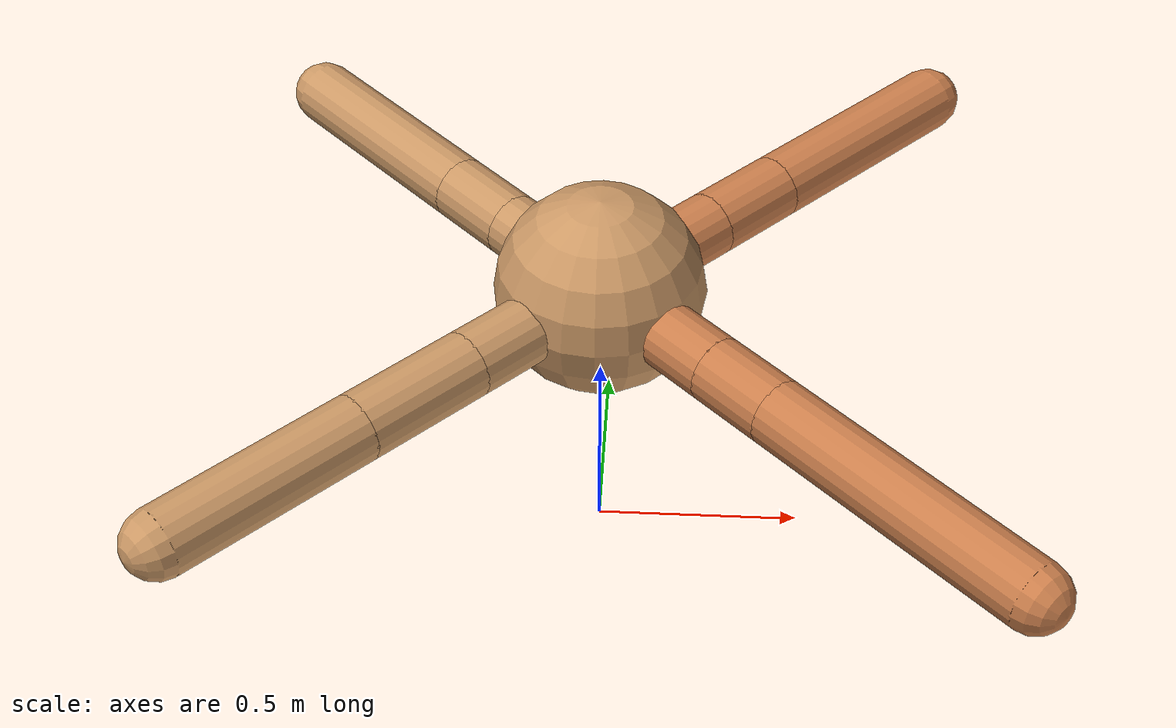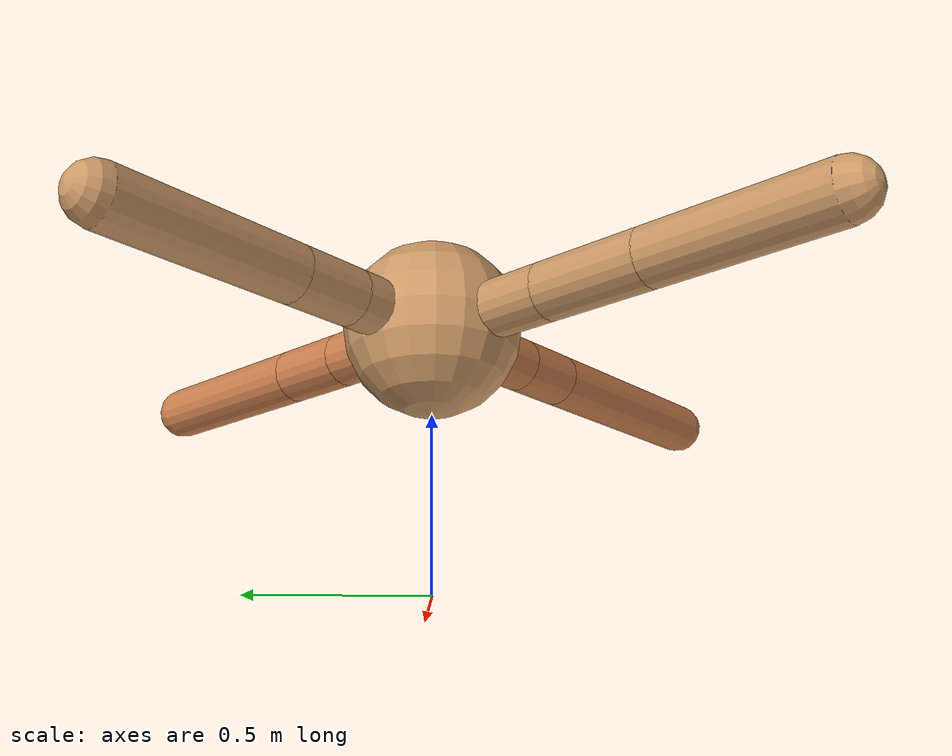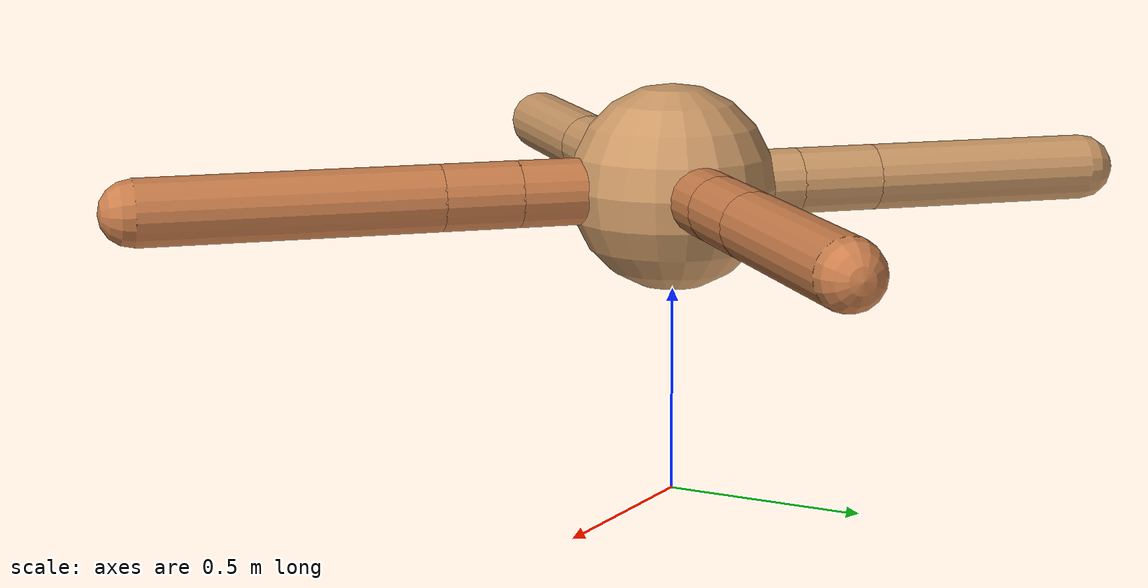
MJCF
<mujoco model="ant">
  <compiler angle="degree" coordinate="local" inertiafromgeom="true" />
  <option integrator="RK4" timestep="0.01" />
  <custom>
    <numeric data="0.0 0.0 0.55 1.0 0.0 0.0 0.0 0.0 1.0 0.0 -1.0 0.0 -1.0 0.0 1.0" name="init_qpos" />
  </custom>
  <default>
    <joint armature="1" damping="1" limited="true" />
    <geom conaffinity="0" condim="3" density="5.0" friction="1.5 0.1 0.1" margin="0.01" rgba="0.8 0.6 0.4 1" />
  </default>
  <worldbody>
    <body name="torso" pos="0 0 0.75">
      <geom name="torso_geom" pos="0 0 0" size="0.25" type="sphere" />

      <body name="front_left_leg" pos="0 0 0">
        <geom fromto="0.0 0.0 0.0 0.25313814774535387 0.25313814774535387 0.0" name="aux_1_geom" size="0.08" type="capsule" rgba=".8 .5 .3 1" />
        <body name="aux_1" pos="0.25313814774535387 0.25313814774535387 0.0">
          <joint axis="0 0 1" name="hip_1" pos="0.0 0.0 0.0" range="-40 40" type="hinge" />
          <geom fromto="0.0 0.0 0.0 0.1575429926842023 0.1575429926842023 0.0" name="left_leg_geom" size="0.08" type="capsule" rgba=".8 .5 .3 1" />
          <body pos="0.1575429926842023 0.1575429926842023 0.0" name="front_left_foot">
            <joint axis="-1 1 0" name="ankle_1" pos="0.0 0.0 0.0" range="30 100" type="hinge" />
            <geom fromto="0.0 0.0 0.0 0.4048272281050953 0.4048272281050953 0.0" name="left_ankle_geom" size="0.08" type="capsule" rgba=".8 .5 .3 1" />
          </body>
        </body>
      </body>
      <body name="front_right_leg" pos="0 0 0">
        <geom fromto="0.0 0.0 0.0 -0.22252096500378438 0.22252096500378438 0.0" name="aux_2_geom" size="0.08" type="capsule" />
        <body name="aux_2" pos="-0.22252096500378438 0.22252096500378438 0.0">
          <joint axis="0 0 1" name="hip_2" pos="0.0 0.0 0.0" range="-40 40" type="hinge" />
          <geom fromto="0.0 0.0 0.0 -0.14131097591973515 0.14131097591973515 0.0" name="right_leg_geom" size="0.08" type="capsule" />
          <body pos="-0.14131097591973515 0.14131097591973515 0.0" name="front_right_foot">
            <joint axis="1 1 0" name="ankle_2" pos="0.0 0.0 0.0" range="-100 -30" type="hinge" />
            <geom fromto="0.0 0.0 0.0 -0.3984665028718786 0.3984665028718786 0.0" name="right_ankle_geom" size="0.08" type="capsule" />
          </body>
        </body>
      </body>
      <body name="left_back_leg" pos="0 0 0">
        <geom fromto="0.0 0.0 0.0 -0.2839363829740544 -0.2839363829740544 0.0" name="aux_3_geom" size="0.08" type="capsule" />
        <body name="aux_3" pos="-0.2839363829740544 -0.2839363829740544 0.0">
          <joint axis="0 0 1" name="hip_3" pos="0.0 0.0 0.0" range="-40 40" type="hinge" />
          <geom fromto="0.0 0.0 0.0 -0.2176691160058801 -0.2176691160058801 0.0" name="back_leg_geom" size="0.08" type="capsule" />
          <body pos="-0.2176691160058801 -0.2176691160058801 0.0" name="left_back_foot">
            <joint axis="-1 1 0" name="ankle_3" pos="0.0 0.0 0.0" range="-100 -30" type="hinge" />
            <geom fromto="0.0 0.0 0.0 -0.3586937981214998 -0.3586937981214998 0.0" name="third_ankle_geom" size="0.08" type="capsule" />
          </body>
        </body>
      </body>
      <body name="right_back_leg" pos="0 0 0">
        <geom fromto="0.0 0.0 0.0 0.2731021815505141 -0.2731021815505141 0.0" name="aux_4_geom" size="0.08" type="capsule" rgba=".8 .5 .3 1" />
        <body name="aux_4" pos="0.2731021815505141 -0.2731021815505141 0.0">
          <joint axis="0 0 1" name="hip_4" pos="0.0 0.0 0.0" range="-40 40" type="hinge" />
          <geom fromto="0.0 0.0 0.0 0.13225741654289577 -0.13225741654289577 0.0" name="rightback_leg_geom" size="0.08" type="capsule" rgba=".8 .5 .3 1" />
          <body pos="0.13225741654289577 -0.13225741654289577 0.0" name="right_back_foot">
            <joint axis="1 1 0" name="ankle_4" pos="0.0 0.0 0.0" range="30 100" type="hinge" />
            <geom fromto="0.0 0.0 0.0 0.5058671313283544 -0.5058671313283544 0.0" name="fourth_ankle_geom" size="0.08" type="capsule" rgba=".8 .5 .3 1" />
          </body>
        </body>
      </body>
    </body>
  </worldbody>
  <actuator>
    <motor ctrllimited="true" ctrlrange="-1.0 1.0" joint="hip_4" gear="150" />
    <motor ctrllimited="true" ctrlrange="-1.0 1.0" joint="ankle_4" gear="150" />
    <motor ctrllimited="true" ctrlrange="-1.0 1.0" joint="hip_1" gear="150" />
    <motor ctrllimited="true" ctrlrange="-1.0 1.0" joint="ankle_1" gear="150" />
    <motor ctrllimited="true" ctrlrange="-1.0 1.0" joint="hip_2" gear="150" />
    <motor ctrllimited="true" ctrlrange="-1.0 1.0" joint="ankle_2" gear="150" />
    <motor ctrllimited="true" ctrlrange="-1.0 1.0" joint="hip_3" gear="150" />
    <motor ctrllimited="true" ctrlrange="-1.0 1.0" joint="ankle_3" gear="150" />
  </actuator>
</mujoco>
